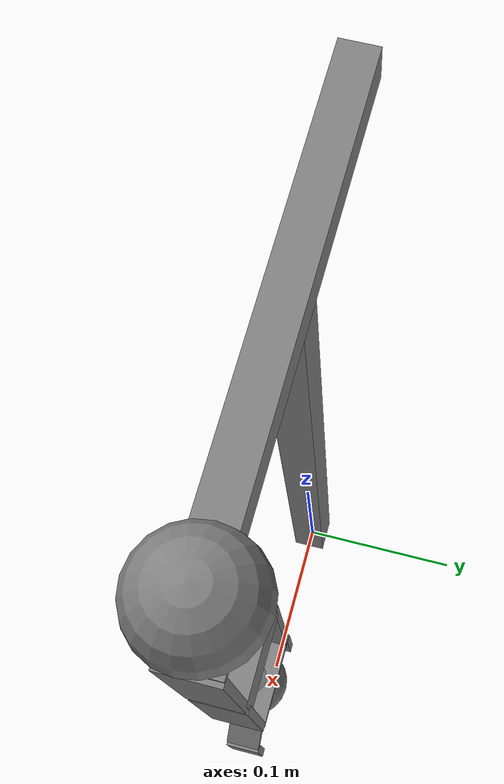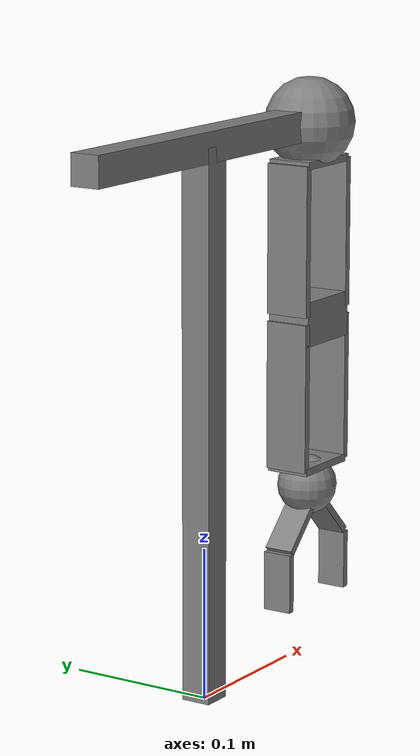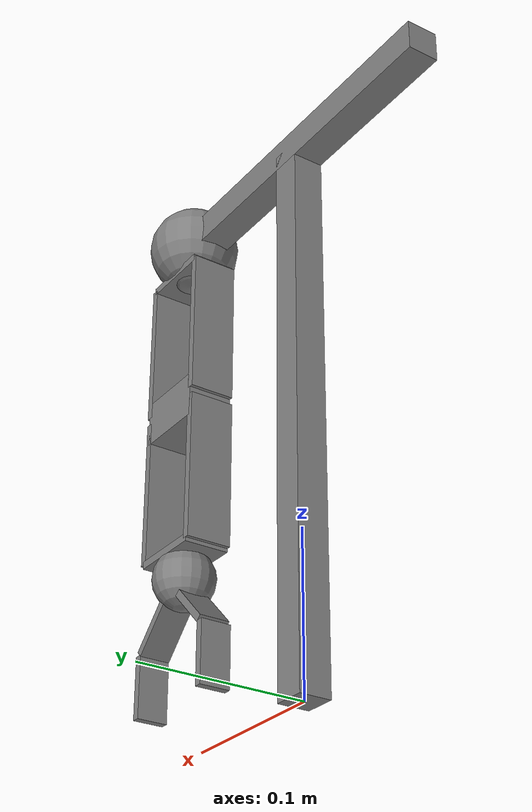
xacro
<?xml version="1.0"?>
<robot xmlns:xacro="http://www.ros.org/wiki/xacro"
       name="simple_arm_3dof">

  <!--   LINK 0: Base vertical       -->
  <link name="estructurabasevertical">
    <visual>
      <origin xyz="0 0 0.18" rpy="0 0 0"/>
      <geometry>
        <box size="0.02 0.02 0.36"/>
      </geometry>
      <material name="gray">
        <color rgba="0.5 0.5 0.5 1"/>
      </material>
    </visual>
  </link>

  <!--   LINK 0.1: Base horizontal   -->
  <link name="estructurabasehorizontal">
    <visual>
      <geometry>
        <box size="0.25 0.02 0.02"/>
      </geometry>
      <material name="gray">
        <color rgba="0.5 0.5 0.5 1"/>
      </material>
    </visual>
  </link>

  <!--   JOINT: Base fijo            -->
  <joint name="base_to_horizontal" type="fixed">
    <parent link="estructurabasevertical"/>
    <child  link="estructurabasehorizontal"/>
    <origin xyz="0 0 0.36" rpy="0 0 0"/>
  </joint>

  <!--   LINK: Hombro con dos dots   -->
  <link name="hombro">
    <!-- Primera esfera -->
    <visual>
      <origin xyz=" 0 0 0" rpy="0 0 0"/>
      <geometry>
        <sphere radius="0.03"/>
      </geometry>
      <material name="gray">
        <color rgba="0.5 0.5 0.5 1"/>
      </material>
    </visual>
  </link>

  <!--   JOINT: Hombro → Primer brazo -->
  <joint name="joint1" type="revolute">
    <parent link="estructurabasehorizontal"/>
    <child  link="hombro"/>
    <origin xyz="0.125 0 0" rpy="0 0 0"/>
    <axis xyz="0 0 1"/>
    <limit lower="-1.57" upper="1.57" effort="1.0" velocity="1.0"/>
  </joint>

  <!--   LINK 1: Primer brazo        -->
  <link name="P1">
    <visual>
      <origin xyz="0 0 -0.025" rpy="0 0 0"/>
      <geometry>
        <box size="0.05 0.03 0.005"/>
      </geometry>
      <material name="gray">
        <color rgba="0.5 0.5 0.5 1"/>
      </material>
    </visual>
  </link>

  <joint name="P1-2" type="fixed">
    <parent link="P1"/>
    <child  link="P2"/>
    <origin xyz="0.025 0 -0.025" rpy="0 0 0"/>
  </joint>

  <joint name="P1-3" type="fixed">
    <parent link="P1"/>
    <child  link="P3"/>
    <origin xyz="-0.025 0 -0.025" rpy="0 0 0"/>
  </joint>

  <link name="P2">
    <visual>
      <origin xyz="0 0 -0.05" rpy="0 0 0"/>
      <geometry>
        <box size="0.005 0.03 0.1"/>
      </geometry>
      <material name="gray">
        <color rgba="0.5 0.5 0.5 1"/>
      </material>
    </visual>
  </link>

  <joint name="P2-4" type="fixed">
    <parent link="P2"/>
    <child  link="P4"/>
    <origin xyz="-0.025 0 -0.105" rpy="0 0 0"/>
  </joint>

  <link name="P3">
    <visual>
      <origin xyz="0 0 -0.05" rpy="0 0 0"/>
      <geometry>
        <box size="0.005 0.03 0.1"/>
      </geometry>
      <material name="gray">
        <color rgba="0.5 0.5 0.5 1"/>
      </material>
    </visual>
  </link>

  <link name="P4">
    <visual>
      <origin xyz="0 0 0" rpy="0 0 0"/>
      <geometry>
        <box size="0.05 0.03 0.03"/>
      </geometry>
      <material name="gray">
        <color rgba="0.5 0.5 0.5 1"/>
      </material>
    </visual>
  </link>

  <joint name="joint2" type="revolute">
    <parent link="hombro"/>
    <child  link="P1"/>
    <origin xyz="0 0 0" rpy="0 0 0"/>
    <axis xyz="1 0 0"/>
    <limit lower="-1.57" upper="1.57" effort="1.0" velocity="1.0"/>
  </joint>

  <!--   LINK 2: Segundo brazo       -->

  <joint name="joint3" type="revolute">
    <parent link="P4"/>
    <child  link="PP1"/>
    <origin xyz="0 0 0" rpy="0 0 0"/>
    <axis xyz="1 0 0"/>
    <limit lower="-1.57" upper="1.57" effort="1.0" velocity="1.0"/>
  </joint>

  <joint name="joint4" type="fixed">
    <parent link="PP1"/>
    <child  link="PP2"/>
    <origin xyz="0 0 0" rpy="0 0 0"/>
  </joint>

  <link name="PP1">
    <visual>
      <origin xyz="0.025 0 -0.05" rpy="0 0 0"/>
      <geometry>
        <box size="0.005 0.03 0.1"/>
      </geometry>
      <material name="gray">
        <color rgba="0.5 0.5 0.5 1"/>
      </material>
    </visual>
  </link>

  <link name="PP2">
    <visual>
      <origin xyz="-0.025 0 -0.05" rpy="0 0 0"/>
      <geometry>
        <box size="0.005 0.03 0.1"/>
      </geometry>
      <material name="gray">
        <color rgba="0.5 0.5 0.5 1"/>
      </material>
    </visual>
  </link>

  <joint name="joint5" type="fixed">
    <parent link="PP1"/>
    <child  link="PP3"/>
    <origin xyz="0 0 -0.1" rpy="0 0 0"/>
  </joint>

  <link name="PP3">
    <visual>
      <origin xyz="0 0 0" rpy="0 0 0"/>
      <geometry>
        <box size="0.05 0.03 0.005"/>
      </geometry>
      <material name="gray">
        <color rgba="0.5 0.5 0.5 1"/>
      </material>
    </visual>
  </link>

  <!--   LINK 3: GRIPPER       -->

  <joint name="joint6" type="fixed">
    <parent link="PP3"/>
    <child  link="muñeca"/>
    <origin xyz="0 0 0" rpy="0 0 0"/>
  </joint>

  <joint name="joint_dedo11" type="fixed">  <!-- o revolute/continuous según necesites -->
    <parent link="muñeca"/>
    <child  link="dedo11"/>
    <!-- Origin aquí posiciona el frame de dedo11 al final de muñeca -->
    <origin xyz="0 0 -0.02" rpy="0 0 0"/>
    <axis xyz="0 0 1"/>
    <limit lower="-1.57" upper="1.57" effort="1.0" velocity="1.0"/>
  </joint>

  <link name="muñeca">
    <visual>
      <origin xyz=" 0 0 -0.015" rpy="0 0 0"/>
      <geometry>
        <sphere radius="0.02"/>
      </geometry>
      <material name="gray">
        <color rgba="0.5 0.5 0.5 1"/>
      </material>
    </visual>
  </link>

  <link name="dedo11">
    <visual>
      <origin xyz="-0.02 0 -0.02" rpy="0 0.7854 0"/>
      <geometry>
        <box size="0.005 0.02 0.04"/>
      </geometry>
      <material name="gray">
        <color rgba="0.5 0.5 0.5 1"/>
      </material>
    </visual>
  </link>

  <joint name="joint7" type="fixed">
    <parent link="dedo11"/>
    <child  link="dedo12"/>
    <origin xyz="-0.035 0 -0.035" rpy="0 0 0"/>
  </joint>

  <link name="dedo12">
    <visual>
      <origin xyz="0 0 -0.02" rpy="0 0 0"/>
      <geometry>
        <box size="0.005 0.02 0.04"/>
      </geometry>
      <material name="gray">
        <color rgba="0.5 0.5 0.5 1"/>
      </material>
    </visual>
  </link>

  <joint name="joint_dedo21" type="fixed">  <!-- o revolute/continuous según necesites -->
    <parent link="muñeca"/>
    <child  link="dedo21"/>
    <!-- Origin aquí posiciona el frame de dedo11 al final de muñeca -->
    <origin xyz="0 0 -0.02" rpy="0 0 0"/>
    <axis xyz="0 1 0"/>
    <limit lower="-1.57" upper="1.57" effort="1.0" velocity="1.0"/>
  </joint>

  <link name="dedo21">
    <visual>
      <origin xyz="0.02 0 -0.02" rpy="0 -0.7854 0"/>
      <geometry>
        <box size="0.005 0.02 0.04"/>
      </geometry>
      <material name="gray">
        <color rgba="0.5 0.5 0.5 1"/>
      </material>
    </visual>
  </link>

  <joint name="joint8" type="fixed">
    <parent link="dedo21"/>
    <child  link="dedo22"/>
    <origin xyz="0.035 0 -0.035" rpy="0 0 0"/>
  </joint>

  <link name="dedo22">
    <visual>
      <origin xyz="0 0 -0.02" rpy="0 0 0"/>
      <geometry>
        <box size="0.005 0.02 0.04"/>
      </geometry>
      <material name="gray">
        <color rgba="0.5 0.5 0.5 1"/>
      </material>
    </visual>
  </link>

  <ros2_control name="SimpleArmSystem" type="system">
    <hardware>
      <!-- Para simulación -->
      <plugin>fake_components/GenericSystem</plugin>
      <param name="fake_sensor_commands">true</param>
    </hardware>

    <joint name="joint1">
      <command_interface name="position"/>
      <state_interface name="position"/>
      <state_interface name="velocity"/>
    </joint>
    <joint name="joint2">
      <command_interface name="position"/>
      <state_interface name="position"/>
      <state_interface name="velocity"/>
    </joint>
    <joint name="joint3">
      <command_interface name="position"/>
      <state_interface name="position"/>
      <state_interface name="velocity"/>
    </joint>
  </ros2_control>

  <!-- Transmissions -->
  <transmission name="trans_joint1">
    <type>transmission_interface/SimpleTransmission</type>
    <joint name="joint1">
      <hardwareInterface>hardware_interface/PositionJointInterface</hardwareInterface>
    </joint>
    <actuator name="motor1">
      <hardwareInterface>hardware_interface/PositionJointInterface</hardwareInterface>
      <mechanicalReduction>1</mechanicalReduction>
    </actuator>
  </transmission>

  <transmission name="trans_joint2">
    <type>transmission_interface/SimpleTransmission</type>
    <joint name="joint2">
      <hardwareInterface>hardware_interface/PositionJointInterface</hardwareInterface>
    </joint>
    <actuator name="motor2">
      <hardwareInterface>hardware_interface/PositionJointInterface</hardwareInterface>
      <mechanicalReduction>1</mechanicalReduction>
    </actuator>
  </transmission>

  <transmission name="trans_joint3">
    <type>transmission_interface/SimpleTransmission</type>
    <joint name="joint3">
      <hardwareInterface>hardware_interface/PositionJointInterface</hardwareInterface>
    </joint>
    <actuator name="motor3">
      <hardwareInterface>hardware_interface/PositionJointInterface</hardwareInterface>
      <mechanicalReduction>1</mechanicalReduction>
    </actuator>
  </transmission>

</robot>
